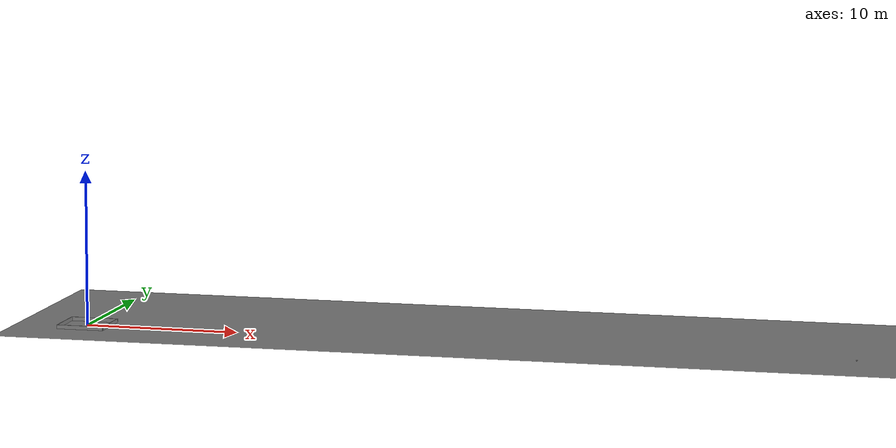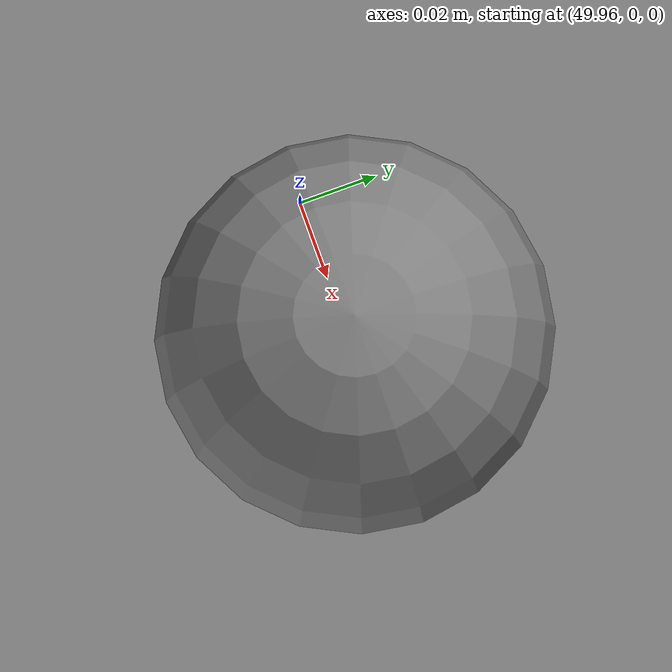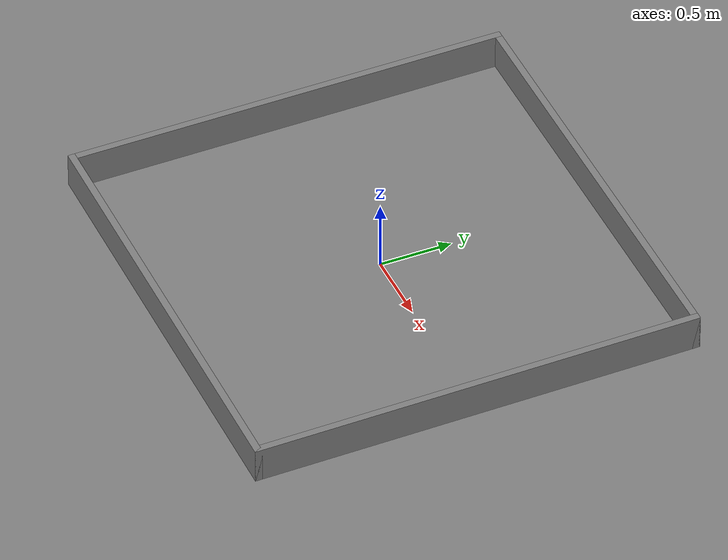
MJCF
<mujoco model="microduck">
  <compiler angle="radian" meshdir="assets" autolimits="true" />
  <default>
    <default class="microduck">
      <joint frictionloss="0.1" armature="0.005" />
      <position kp="50" dampratio="1" />
      <default class="visual">
        <geom type="mesh" contype="0" conaffinity="0" group="2" />
      </default>
      <default class="collision">
        <geom group="3" />
      </default>
    </default>
  </default>
  <default>
    <default class="perfect_actuator">
      <geom contype="0" conaffinity="0" />
      <joint damping="0.15" frictionloss="0.1" armature="0.001" />
      <position kp="10.0" kv="0.1" forcerange="-20.0 20.0" />
    </default>
    <default class="chosen_actuator_old">
      <geom contype="0" conaffinity="0" />
      <joint damping="0.048" frictionloss="0.006" armature="0.002" />
      <position kp="0.52" kv="0.0" forcerange="-0.91 0.91" ctrlrange="-10.0 10.0" />
    </default>
    <default class="chosen_actuator_new">
      <geom contype="0" conaffinity="0" />
      <joint damping="0.041" frictionloss="0.032" armature="0.002" />
      <position kp="0.386" kv="0.0" forcerange="-0.67 0.67" ctrlrange="-10.0 10.0" />
    </default>
    <default class="chosen_actuator_antoine">
      <geom contype="0" conaffinity="0" />
      <joint damping="0.044" frictionloss="0.013" armature="0.0017" />
      <position kp="0.43" kv="0.0" forcerange="-0.75 0.75" ctrlrange="-10.0 10.0" />
    </default>
    <default class="chosen_actuator">
      <geom contype="0" conaffinity="0" />
      <joint damping="0.053" frictionloss="0.0048" armature="0.0018" />
      <position kp="0.55" kv="0.0" forcerange="-0.96 0.96" ctrlrange="-10.0 10.0" />
    </default>
    <default class="passive_wheel">
      <geom contype="0" conaffinity="0" />
      <joint damping="0.0" frictionloss="0.0" armature="0.0001" />
    </default>
    <default class="passive_joint">
      <geom contype="0" conaffinity="0" />
      <joint damping="0.0" frictionloss="0.0" armature="0.0001" />
    </default>
  </default>
  <sensor>
    <framequat name="orientation" objtype="site" noise="0.001" objname="imu" />
    <gyro name="angular-velocity" site="imu" noise="0.005" />
    <gyro name="imu_ang_vel" site="imu" />
    <velocimeter name="imu_lin_vel" site="imu" />
    <accelerometer name="imu_accel" site="imu" />
    <subtreeangmom name="root_angmom" body="trunk_base" />
  </sensor>
  <default>
    <default class="self_collision_only">
      <geom group="3" contype="2" conaffinity="2" />
    </default>
    <equality solref="0.002 1" solimp="0.99 0.999 0.0005 0.5 2" />
  </default>
  <worldbody>
    <body name="trunk_base" pos="0 0 0.12" quat="1 0 0 0" childclass="microduck">
      <freejoint name="trunk_base_freejoint" />
      <inertial pos="-0.0226332 -2.70828e-05 0.00280064" mass="0.199224" fullinertia="0.000123975 0.000145931 0.000115351 7.1651e-08 -2.06915e-05 1.32429e-07" />
      <geom type="mesh" class="self_collision_only" pos="0.004 -0 -0.0175215" quat="0.707107 -0 0 0.707107" mesh="power_support" material="power_support_material" />
      <geom type="mesh" class="collision" pos="-0.0359693 0 -0.00385049" quat="0.00617059 0.70708 -0.70708 -0.00617059" mesh="np_f970" material="np_f970_material" />
      <site group="3" name="imu" pos="-0.021 6.64098e-05 -0.0146984" quat="1 -0 -0 0" />
      <body name="yaw2roll" pos="0.006 0.0175 -0.005" quat="0 -0.707107 -0.707107 -0">
        <joint axis="0 0 1" name="left_hip_yaw" type="hinge" range="-0.4363323129985824 0.5235987755982988" class="chosen_actuator" />
        <inertial pos="-8.8e-11 0.00099414 0.0168917" mass="0.0230406" fullinertia="4.1964e-06 3.41752e-06 2.3265e-06 -0 -0 -5.0881e-08" />
        <body name="hip_l" pos="0 0.0165 0.0125" quat="0.707107 -0.707107 -0 -0">
          <joint axis="0 0 1" name="left_hip_roll" type="hinge" range="-0.3839724354387525 0.3839724354387525" class="chosen_actuator" />
          <inertial pos="0.014815 1.6179e-08 -0.00829992" mass="0.00618934" fullinertia="8.60626e-07 1.15753e-06 6.51588e-07 1e-12 3.89882e-07 -1e-12" />
          <geom type="mesh" class="collision" pos="-0.0175 0 -0.0185" quat="0.707107 -0.707107 0 -0" mesh="hip_l" material="hip_l_material" />
          <body name="upper_leg_left" pos="0.025 0 -0.0185" quat="0.5 -0.5 0.5 -0.5">
            <joint axis="0 0 1" name="left_hip_pitch" type="hinge" range="-1.570796326795005 1.5707963267947882" class="chosen_actuator" />
            <inertial pos="0.006766 0.0228838 0.0134531" mass="0.0482067" fullinertia="1.68753e-05 1.03691e-05 1.98269e-05 -4.41852e-06 2.27982e-07 3.89298e-07" />
            <body name="leg" pos="0.022 0.0357771 -0.004" quat="0 0.707107 0.707107 0">
              <joint axis="0 0 1" name="left_knee" type="hinge" range="-1.570796326795012 1.570796326794781" class="chosen_actuator" />
              <inertial pos="-1.52e-10 0.0318937 -0.00953505" mass="0.0215844" fullinertia="5.25056e-06 2.15507e-06 4.33925e-06 -1e-12 0 7.65005e-07" />
              <geom type="mesh" class="collision" pos="-0.022 0.0357771 0.0385" quat="0.5 0.5 0.5 -0.5" mesh="leg" material="leg_material" />
              <body name="ankle_l_v1" pos="0 0.042 -0.026" quat="0 1 -0 0">
                <joint axis="0 0 1" name="left_ankle" type="hinge" range="-1.5707963267949054 1.5707963267948877" class="chosen_actuator" />
                <inertial pos="-0.00680626 -0.0143677 -0.0151851" mass="0.02087" fullinertia="4.85529e-06 9.6767e-06 8.22681e-06 -3.18897e-07 5.6657e-08 1.31522e-07" />
                <site group="3" name="left_foot" pos="-0 -0.0475 -0.0147" quat="0 -0 -0.707107 -0.707107" />
                <body name="tire" pos="-0.0395 -0.0325 -0.0147" quat="1 -0 0 -0">
                  <joint axis="0 0 1" name="passive_LF_wheel" class="passive_joint" />
                  <inertial pos="-0 0 0" mass="0.00447401" fullinertia="2.8556e-07 2.8556e-07 5.3687e-07 -0 -6e-12 0" />
                  <geom type="mesh" class="collision" pos="0.0175 0.0387229 -0.05" quat="0.5 -0.5 -0.5 -0.5" mesh="tire" material="tire_material" />
                </body>
                <body name="tire_2" pos="0.0255 -0.0325 -0.0147" quat="1 -0 0 -0">
                  <joint axis="0 0 1" name="passive_LR_wheel" class="passive_joint" />
                  <inertial pos="-0 0 -0" mass="0.00447401" fullinertia="2.8556e-07 2.8556e-07 5.3687e-07 -0 -6e-12 0" />
                  <geom type="mesh" class="collision" pos="0.0175 0.0387229 -0.05" quat="0.5 -0.5 -0.5 -0.5" mesh="tire" material="tire_material" />
                </body>
              </body>
            </body>
          </body>
        </body>
      </body>
      <body name="neck" pos="0.026 0.0145 0.0324215" quat="0 0 0.707107 -0.707107">
        <joint axis="0 0 1" name="neck_pitch" type="hinge" range="-1.5707963267948966 1.0471975511965976" class="chosen_actuator" />
        <inertial pos="0 -0.025 0.0141665" mass="0.0368414" fullinertia="1.72925e-05 3.12694e-06 1.63707e-05 0 0 0" />
        <body name="neck_pitch" pos="0 -0.05 -0" quat="0 1 0 0">
          <joint axis="0 0 1" name="head_pitch" type="hinge" range="-1.5707963267948974 1.5707963267948957" class="chosen_actuator" />
          <inertial pos="-6.533e-09 0.0116641 -0.0145" mass="0.00572" fullinertia="1.09186e-06 9.66855e-07 5.12111e-07 0 0 0" />
          <body name="yaw_roll_motion" pos="-0 0.0186931 -0.0145" quat="0 0 -0.707107 -0.707107">
            <joint axis="0 0 1" name="head_yaw" type="hinge" range="-2.967059728390373 2.967059728390348" class="chosen_actuator" />
            <inertial pos="-0.000166657 -0.00500964 0.0178065" mass="0.0486" fullinertia="6.97903e-06 8.10293e-06 9.57884e-06 3.21657e-07 -3.4797e-08 3.4295e-07" />
            <body name="jaw_soft" pos="-0.0179 0 0.0145" quat="0.707107 -0 -0.707107 -0">
              <joint axis="0 0 1" name="head_roll" type="hinge" range="-0.43633231299859127 0.4363323129985735" class="chosen_actuator" />
              <inertial pos="0.00460523 0.00120047 -0.0324761" mass="0.188766" fullinertia="0.000320812 0.0002541 0.000149882 -6.32292e-07 6.57154e-06 4.18476e-06" />
              <geom type="mesh" class="collision" pos="-0.0045 -0 -0.018" quat="0.5 0.5 0.5 0.5" mesh="top_head_shell" material="top_head_shell_material" />
              <geom type="mesh" class="collision" pos="-0.0045 0 -0.018" quat="0.5 0.5 0.5 0.5" mesh="jaw" material="jaw_material" />
              <geom type="mesh" class="collision" pos="-0.0043 -0 -0.018" quat="0.5 0.5 0.5 0.5" mesh="bottom_head_shell" material="bottom_head_shell_material" />
              <site group="3" name="head_camera" pos="0.0155 -9.13778e-05 -0.0733" quat="0.707107 0 0.707107 -0" />
              <camera name="head_camera" pos="0.0155 -9.13778e-05 -0.0733" quat="0 0 -1 0" />
              <site group="3" name="tof" pos="0.0135 0.0224086 -0.0733" quat="0.707107 0 0.707107 -0" />
              <site group="3" name="head_imu" pos="0.0152323 0.000111069 -0.05106" quat="1 0 0 -0" />
              <site group="3" name="mouth_tip" pos="-0.00809334 -0 -0.0777383" quat="0.704015 0 0.710185 -0" />
            </body>
          </body>
        </body>
      </body>
      <body name="bearing_roll" pos="0.006 -0.0175 -0.005" quat="0 0.707107 0.707107 0">
        <joint axis="0 0 1" name="right_hip_yaw" type="hinge" range="-0.5235987755982988 0.4363323129985824" class="chosen_actuator" />
        <inertial pos="-8.8e-11 0.00099414 0.0168917" mass="0.0230406" fullinertia="4.1964e-06 3.41752e-06 2.3265e-06 -0 -0 -5.0881e-08" />
        <body name="hip_l_2" pos="-0 0.0165 0.0125" quat="0 -0 0.707107 0.707107">
          <joint axis="0 0 1" name="right_hip_roll" type="hinge" range="-0.3839724354387525 0.3839724354387525" class="chosen_actuator" />
          <inertial pos="0.014815 1.6212e-08 -0.00829992" mass="0.00618934" fullinertia="8.60626e-07 1.15753e-06 6.51588e-07 1e-12 3.89882e-07 -1e-12" />
          <geom type="mesh" class="collision" pos="-0.0175 0 -0.0185" quat="0.707107 -0.707107 -0 -0" mesh="hip_l" material="hip_l_material" />
          <body name="upper_leg_right" pos="0.025 0 -0.0185" quat="0.5 -0.5 0.5 -0.5">
            <joint axis="0 0 1" name="right_hip_pitch" type="hinge" range="-1.5707963267949268 1.5707963267948664" class="chosen_actuator" />
            <inertial pos="-0.006766 0.0228838 0.0134531" mass="0.0482067" fullinertia="1.68753e-05 1.03691e-05 1.98269e-05 4.41852e-06 -2.27982e-07 3.89298e-07" />
            <body name="leg_2" pos="-0.022 0.0357771 -0.004" quat="0 1 -0 -0">
              <joint axis="0 0 1" name="right_knee" type="hinge" range="-1.570796326794932 1.570796326794861" class="chosen_actuator" />
              <inertial pos="-0.0318937 -1.52e-10 -0.00953505" mass="0.0215844" fullinertia="2.15507e-06 5.25056e-06 4.33925e-06 1e-12 -7.65005e-07 0" />
              <geom type="mesh" class="collision" pos="-0.0357771 -0.022 0.0385" quat="0.707107 0 0.707107 -0" mesh="leg" material="leg_material" />
              <body name="ankle_r_v1" pos="-0.042 0 -0.026" quat="0 -0.707107 -0.707107 0">
                <joint axis="0 0 1" name="right_ankle" type="hinge" range="-1.5707963267949063 1.5707963267948868" class="chosen_actuator" />
                <inertial pos="0.00680653 -0.0143679 -0.0149822" mass="0.0208701" fullinertia="4.8595e-06 9.68066e-06 8.22663e-06 3.18865e-07 -6.7107e-08 1.66791e-07" />
                <site group="3" name="right_foot" pos="0 -0.0475 -0.0144819" quat="0.707107 -0.707107 -0 0" />
                <body name="tire_3" pos="0.0395 -0.0325 -0.0144819" quat="0 -0 1 -0">
                  <joint axis="0 0 1" name="passive_RF_wheel" class="passive_joint" />
                  <inertial pos="-0 -0 0" mass="0.00447401" fullinertia="2.8556e-07 2.8556e-07 5.3687e-07 -0 -6e-12 -0" />
                  <geom type="mesh" class="collision" pos="0.0175 0.0387229 -0.05" quat="0.5 -0.5 -0.5 -0.5" mesh="tire" material="tire_material" />
                </body>
                <body name="tire_4" pos="-0.0255 -0.0325 -0.0144819" quat="0 -0 1 -0">
                  <joint axis="0 0 1" name="passive_RR_wheel" class="passive_joint" />
                  <inertial pos="-0 -0 0" mass="0.00447401" fullinertia="2.8556e-07 2.8556e-07 5.3687e-07 -0 -6e-12 -0" />
                  <geom type="mesh" class="collision" pos="0.0175 0.0387229 -0.05" quat="0.5 -0.5 -0.5 -0.5" mesh="tire" material="tire_material" />
                </body>
              </body>
            </body>
          </body>
        </body>
      </body>
    </body>
    <geom name="floor" type="plane" size="0 0 0.05" pos="0 0 0" />
    <geom name="wall_px" type="box" pos="1.525 0 0.125" size="0.025 1.55 0.125" />
    <geom name="wall_nx" type="box" pos="-1.525 0 0.125" size="0.025 1.55 0.125" />
    <geom name="wall_py" type="box" pos="0 1.525 0.125" size="1.55 0.025 0.125" />
    <geom name="wall_ny" type="box" pos="0 -1.525 0.125" size="1.55 0.025 0.125" />
    <body name="ball" pos="50 0 0.05">
      <freejoint name="ball_freejoint" />
      <geom name="ball_geom" type="sphere" size="0.05" mass="0.03" friction="0.4 0.01 0.003" solref="0.03 0.4" condim="6" />
    </body>
  </worldbody>
  <asset>
    <mesh file="top_head_shell.stl" />
    <mesh file="power_support.stl" />
    <mesh file="hip_l.stl" />
    <mesh file="bottom_head_shell.stl" />
    <mesh file="np_f970.stl" />
    <mesh file="tire.stl" />
    <mesh file="leg.stl" />
    <mesh file="jaw.stl" />
    <material name="seeed_bearing__configuration__22x16x4_material" rgba="0.713725 0.760784 0.8 1" />
    <material name="right_shell_material" rgba="0.8 0.8 0.8 1" />
    <material name="banana_pcb_locker_material" rgba="0.647059 0.647059 0.647059 1" />
    <material name="trunk_base_material" rgba="0.34902 0.376471 0.4 1" />
    <material name="xl330_material" rgba="0.286275 0.286275 0.286275 1" />
    <material name="power_support_material" rgba="0.901961 0.901961 0.901961 1" />
    <material name="np_f970_material" rgba="0.901961 0.901961 0.901961 1" />
    <material name="left_shell_material" rgba="0.8 0.8 0.8 1" />
    <material name="yaw2roll_material" rgba="0.647059 0.647059 0.647059 1" />
    <material name="bearing_roll_material" rgba="0.262745 0.282353 0.301961 1" />
    <material name="hip_l_material" rgba="0.901961 0.901961 0.901961 1" />
    <material name="upper_leg_left_material" rgba="0.866667 0.866667 0.866667 1" />
    <material name="upper_leg_rigidity_plate_material" rgba="0.537255 0.854902 0.827451 1" />
    <material name="leg_material" rgba="0.811765 0.858824 0.898039 1" />
    <material name="roller_blade_material" rgba="0.901961 0.901961 0.901961 1" />
    <material name="seeed_bearing__configuration_default_material" rgba="0.713725 0.760784 0.8 1" />
    <material name="ankle_l_v1_material" rgba="0.980392 0.713725 0.00392157 1" />
    <material name="tire_material" rgba="0.34902 0.376471 0.4 1" />
    <material name="rim_material" rgba="0.729412 0.25098 0.105882 1" />
    <material name="neck_material" rgba="0.8 0.8 0.8 1" />
    <material name="neck_pitch_material" rgba="0.34902 0.376471 0.4 1" />
    <material name="yaw_roll_motion_material" rgba="0.768627 0.886275 0.952941 1" />
    <material name="lens_material" rgba="0.262745 0.282353 0.301961 1" />
    <material name="face_part_material" rgba="0.34902 0.376471 0.4 1" />
    <material name="jaw_soft_material" rgba="0.85098 0.756863 0.866667 1" />
    <material name="motor_support_material" rgba="0.262745 0.282353 0.301961 1" />
    <material name="top_head_shell_material" rgba="0.901961 0.901961 0.901961 1" />
    <material name="elec_rpi_robot_hat_pcb_material" rgba="0.313725 0.486275 0.411765 1" />
    <material name="soft_mouth_top_material" rgba="0.85098 0.756863 0.866667 1" />
    <material name="noenoeil_material" rgba="0.262745 0.282353 0.301961 1" />
    <material name="jaw_material" rgba="0.980392 0.713725 0.00392157 1" />
    <material name="bottom_head_shell_material" rgba="0.980392 0.713725 0.00392157 1" />
    <material name="m12_lens_holder_material" rgba="0.262745 0.282353 0.301961 1" />
    <material name="pcb__raspberry_pi_zero_2_w_material" rgba="0.498039 0.498039 0.498039 1" />
    <material name="speaker_material" rgba="0.294118 0.290196 0.290196 1" />
    <material name="upper_leg_right_material" rgba="0.866667 0.866667 0.866667 1" />
    <material name="ankle_r_v1_material" rgba="0.980392 0.713725 0.00392157 1" />
  </asset>
  <actuator>
    <position class="chosen_actuator" name="left_hip_yaw" joint="left_hip_yaw" />
    <position class="chosen_actuator" name="left_hip_roll" joint="left_hip_roll" />
    <position class="chosen_actuator" name="left_hip_pitch" joint="left_hip_pitch" />
    <position class="chosen_actuator" name="left_knee" joint="left_knee" />
    <position class="chosen_actuator" name="left_ankle" joint="left_ankle" />
    <position class="chosen_actuator" name="neck_pitch" joint="neck_pitch" />
    <position class="chosen_actuator" name="head_pitch" joint="head_pitch" />
    <position class="chosen_actuator" name="head_yaw" joint="head_yaw" />
    <position class="chosen_actuator" name="head_roll" joint="head_roll" />
    <position class="chosen_actuator" name="right_hip_yaw" joint="right_hip_yaw" />
    <position class="chosen_actuator" name="right_hip_roll" joint="right_hip_roll" />
    <position class="chosen_actuator" name="right_hip_pitch" joint="right_hip_pitch" />
    <position class="chosen_actuator" name="right_knee" joint="right_knee" />
    <position class="chosen_actuator" name="right_ankle" joint="right_ankle" />
  </actuator>
  <equality />
  <option timestep="0.005" />
  <keyframe>
    <key name="STAND" qpos="-0.30000000000000004 0.0 0.12 1 0 0 0  50 0 0.05 1 0 0 0" ctrl="0 -0.08726646259971647 -0.457924 -0.00494 0.452984 0.3490658503988659 0.3490658503988659 0 0 0 0.08726646259971647 0.457924 0.00494 -0.452984" />
  </keyframe>
</mujoco>
